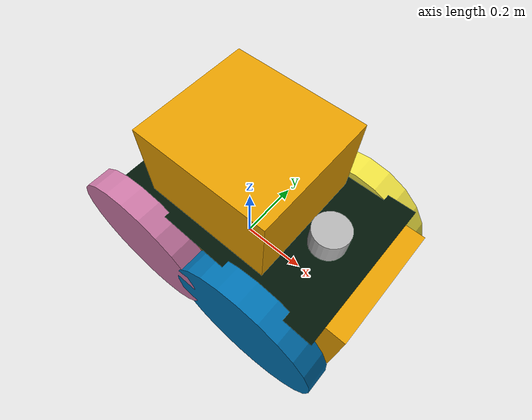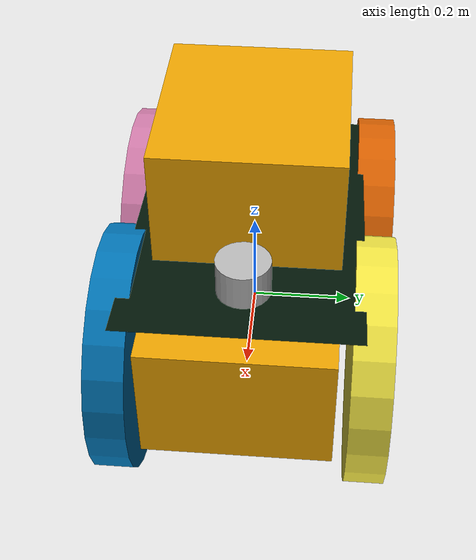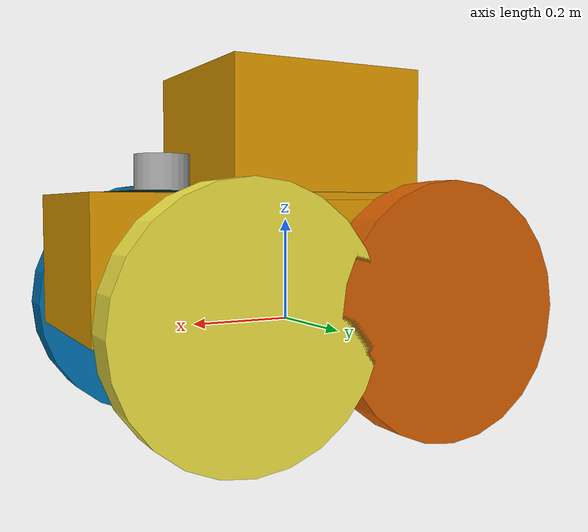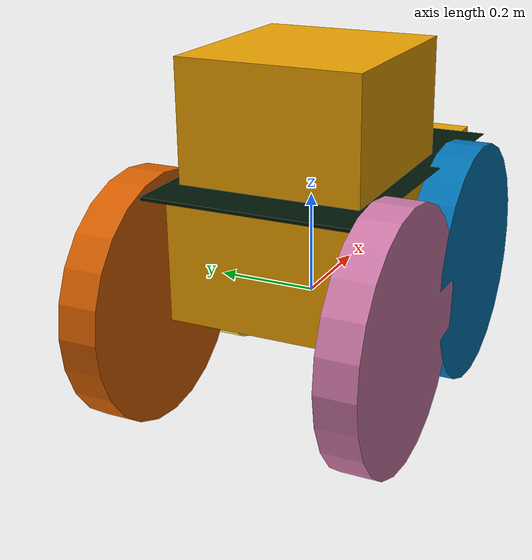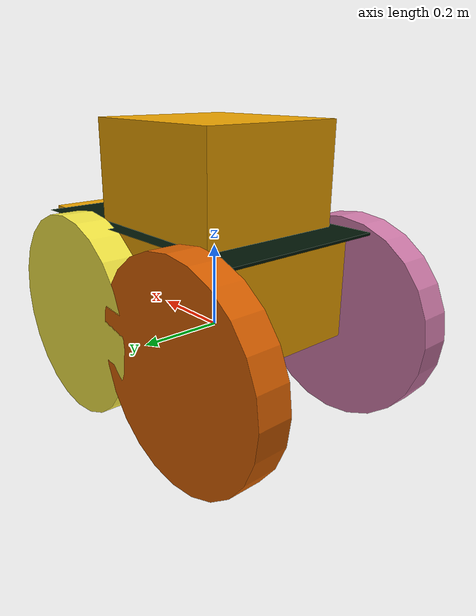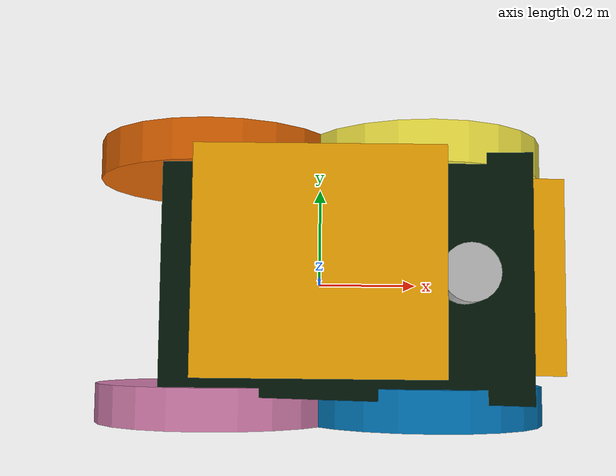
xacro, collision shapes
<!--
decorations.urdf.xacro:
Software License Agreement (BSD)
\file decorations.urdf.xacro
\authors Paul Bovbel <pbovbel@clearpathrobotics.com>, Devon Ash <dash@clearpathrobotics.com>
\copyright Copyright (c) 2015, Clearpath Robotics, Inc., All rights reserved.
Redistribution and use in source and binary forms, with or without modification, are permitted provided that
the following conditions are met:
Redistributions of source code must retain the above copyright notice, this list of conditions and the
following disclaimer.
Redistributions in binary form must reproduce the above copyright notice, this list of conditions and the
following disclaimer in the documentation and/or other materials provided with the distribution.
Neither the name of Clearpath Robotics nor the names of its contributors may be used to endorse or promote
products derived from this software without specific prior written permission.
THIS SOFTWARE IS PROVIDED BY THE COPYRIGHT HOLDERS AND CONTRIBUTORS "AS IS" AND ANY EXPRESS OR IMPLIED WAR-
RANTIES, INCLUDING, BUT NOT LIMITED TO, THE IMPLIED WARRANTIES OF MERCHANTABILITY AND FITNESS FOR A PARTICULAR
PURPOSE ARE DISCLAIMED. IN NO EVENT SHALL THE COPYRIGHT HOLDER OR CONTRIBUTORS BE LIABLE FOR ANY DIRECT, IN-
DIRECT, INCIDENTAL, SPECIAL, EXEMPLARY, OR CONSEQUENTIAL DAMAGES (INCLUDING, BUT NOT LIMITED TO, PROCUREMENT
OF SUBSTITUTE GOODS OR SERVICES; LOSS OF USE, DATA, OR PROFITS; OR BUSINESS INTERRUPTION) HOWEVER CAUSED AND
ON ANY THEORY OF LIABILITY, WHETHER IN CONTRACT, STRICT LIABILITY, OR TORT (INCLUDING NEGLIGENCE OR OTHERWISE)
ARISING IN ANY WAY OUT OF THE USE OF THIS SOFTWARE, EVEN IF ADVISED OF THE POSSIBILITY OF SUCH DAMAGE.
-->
<?xml version="1.0"?>
<robot name="trog" xmlns:xacro="http://ros.org/wiki/xacro">

  <!-- General Arguements -->
  <xacro:arg name="robot_namespace" default="/" />
  <xacro:arg name="urdf_extras" default="empty.urdf" />
  <xacro:arg name="laser_enabled" default="true" />
  <xacro:arg name="gpu" default="false"/>
  <xacro:property name="gpu" value="$(arg gpu)" />
  <xacro:arg name="organize_cloud" default="false"/>
  <xacro:property name="organize_cloud" value="$(arg organize_cloud)" />
  <xacro:property name="M_PI" value="3.14159"/>

  <!-- Included URDF/XACRO Files -->
  <xacro:include filename="$(find trog_description)/urdf/decorations.urdf.xacro" />
  <xacro:include filename="$(find trog_description)/urdf/wheel.urdf.xacro" />

  <!-- Included velodyne lidar -->
  <xacro:include filename="$(find velodyne_description)/urdf/VLP_16.urdf.xacro"/>

  <!-- Base Size -->
  <xacro:property name="base_x_size" value="0.48260000" />
  <xacro:property name="base_y_size" value="0.35560000" />
  <xacro:property name="base_z_size" value="0.49630000" />

  <!-- Wheel Mounting Positions -->
  <xacro:property name="wheelbase" value="0.4064" />
  <xacro:property name="track" value="0.4826" />
  <xacro:property name="wheel_vertical_offset" value="0.03" /> <!--MAY NEED TO ADJUST VERTICAL OFFSET -->

  <!-- Wheel Properties -->
  <xacro:property name="wheel_length" value="0.0762" />
  <xacro:property name="wheel_radius" value="0.244" />

  <!-- Base link is the center of the robot's bottom plate -->
  <link name="base_link">
    <visual>
      <origin xyz="0 0 0" rpy="0 0 0" />
      <geometry>
        <mesh filename="package://trog_description/meshes/base_link.dae" />
      </geometry>
    </visual>
    <collision>
      <origin xyz="${20 / 200.0} 0 ${base_z_size/4}" rpy="0 0 0" />
      <geometry>
        <box size="${base_x_size + 20 / 100.0} ${base_y_size} ${base_z_size/2}"/>
      </geometry>
    </collision>
    <collision>
      <origin xyz="0 0 ${base_z_size*3/4-0.01}" rpy="0 0 0" />
      <geometry>
        <box size="${base_x_size*4/5} ${base_y_size} ${base_z_size/2}"/>
      </geometry>
    </collision>
  </link>

  <!-- Base footprint is on the ground under the robot -->
  <link name="base_footprint"/>
  <joint name="base_footprint_joint" type="fixed">
    <origin xyz="0 0 ${wheel_vertical_offset - wheel_radius}" rpy="0 0 0" />
    <parent link="base_link" />
    <child link="base_footprint" />
  </joint>

  <!-- Inertial link stores the robot's inertial information -->
  <link name="inertial_link">
    <inertial>
      <mass value="50" />
      <origin xyz="0 0 0.1" />
      <inertia ixx="0.6022" ixy="-0.02364" ixz="-0.1197" iyy="1.7386" iyz="-0.001544" izz="2.0296" />
    </inertial>
  </link>

  <joint name="inertial_joint" type="fixed">
    <origin xyz="0 0 0" rpy="0 0 0" />
    <parent link="base_link" />
    <child link="inertial_link" />
  </joint>

  <!-- IMU Link is the standard mounting position for the UM6 IMU.-->
  <!-- Can be modified with environment variables in /etc/ros/setup.bash -->

  <!-- Antbot wheel macros -->
  <xacro:trog_wheel wheel_prefix="front_left">
    <origin xyz="${wheelbase/2} ${track/2} ${wheel_vertical_offset}" rpy="0 0 0" />
  </xacro:trog_wheel>
  <xacro:trog_wheel wheel_prefix="front_right">
    <origin xyz="${wheelbase/2} ${-track/2} ${wheel_vertical_offset}" rpy="0 0 0" />
  </xacro:trog_wheel>
  <xacro:trog_wheel wheel_prefix="rear_left">
    <origin xyz="${-wheelbase/2} ${track/2} ${wheel_vertical_offset}" rpy="0 0 0" />
  </xacro:trog_wheel>
  <xacro:trog_wheel wheel_prefix="rear_right">
    <origin xyz="${-wheelbase/2} ${-track/2} ${wheel_vertical_offset}" rpy="0 0 0" />
  </xacro:trog_wheel>

  <!-- Velodyne Lidar -->
  <xacro:if value="$(arg laser_enabled)">
  <xacro:VLP_16 parent="base_link" name="velodyne" topic="/velodyne_points" organize_cloud="${organize_cloud}" hz="10" samples="440" gpu="${gpu}">
  <origin xyz="0.26 0 0.25" rpy="0 0 0" /> <!-- NEED TO FIND CORRECT POSITION -->
  </xacro:VLP_16>
  </xacro:if>

  <!-- Decorations -->
  <xacro:Antbot_decorate />

  <!-- Gazebo Plugins -->
  <gazebo>
    <plugin name="gazebo_ros_control" filename="libgazebo_ros_control.so">
      <robotNamespace>$(arg robot_namespace)</robotNamespace>
      <legacyModeNS>true</legacyModeNS>
    </plugin>
  </gazebo>

  <!-- Optional custom includes. -->
  <xacro:include filename="$(arg urdf_extras)" />
</robot>

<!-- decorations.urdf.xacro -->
<robot name="Antbot_decorations" xmlns:xacro="http://ros.org/wiki/xacro">

  <material name="dark_grey"><color rgba="0.2 0.2 0.2 1.0" /></material>
  <material name="medium_grey"><color rgba="0.6 0.6 0.6 1.0" /></material>
  <material name="light_grey"><color rgba="0.8 0.8 0.8 1.0" /></material>
  <material name="yellow"><color rgba="0.8 0.8 0.0 1.0" /></material>
  <material name="black"><color rgba="0.15 0.15 0.15 1.0" /></material>
  <material name="white"><color rgba="1.0 1.0 1.0 1.0" /></material>
  <material name="red"><color rgba="1.0 0.0 0.0 1.0" /></material>

  <xacro:macro name="Antbot_decorate">

        <link name="top_plate_link">
          <visual>
            <origin xyz="0 0 0" rpy="0 0 0" />
            <geometry>
              <mesh filename="package://trog_description/meshes/top_plate.dae" />
            </geometry>
          </visual>
          <collision>
            <origin xyz="0 0 0" rpy="0 0 0"/>
            <geometry>
              <mesh filename="package://trog_description/meshes/top_plate.stl" />
            </geometry>
          </collision>
        </link>

        <!-- Attach top plate -->
        <joint name="top_plate_joint" type="fixed">
          <parent link="base_link" />
          <child link="top_plate_link"/>
          <origin xyz="0.0812 0 0.245" rpy="0 0 0"/>
        </joint>
        <!-- Top plate front link -->
        <joint name="top_plate_front_joint" type="fixed">
          <parent link="top_plate_link" />
          <child link="top_plate_front_link"/>
          <origin xyz="0.36367 0 0.00639" rpy="0 0 0"/>
        </joint>
        <!-- Top plate rear link-->
        <joint name="top_plate_rear_joint" type="fixed">
          <parent link="top_plate_link" />
          <child link="top_plate_rear_link"/>
          <origin xyz="-0.36633 0 0.00639" rpy="0 0 0"/>
        </joint>

      <link name="top_plate_front_link"/>
      <link name="top_plate_rear_link"/>

  </xacro:macro>

</robot>

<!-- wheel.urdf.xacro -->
<robot xmlns:xacro="http://ros.org/wiki/xacro" name="trog_wheel">

	<xacro:macro name="trog_wheel" params="wheel_prefix *joint_pose">
		<link name="${wheel_prefix}_wheel_link">
			<inertial>
				<mass value="2.637" />
				<origin xyz="0 0 0" />
				<inertia  ixx="0.02467" ixy="0" ixz="0" iyy="0.04411" iyz="0" izz="0.02467" />
			</inertial>
			<visual>
				<origin xyz="0 0 0" rpy="0 0 0" />
				<geometry>
					<mesh filename="package://trog_description/meshes/wheel.dae" />
				</geometry>
			</visual>
			<collision>
				<origin xyz="0 0 0" rpy="${M_PI/2} 0 0" />
				<geometry>
					<cylinder length="${wheel_length}" radius="${wheel_radius}" />
				</geometry>
			</collision>
		</link>

		<gazebo reference="${wheel_prefix}_wheel_link">
			<mu1 value="1.0"/>
			<mu2 value="0.5"/>
			<kp value="10000000.0" />
			<kd value="1.0" />
			<fdir1 value="1 0 0"/>
		</gazebo>

		<joint name="${wheel_prefix}_wheel" type="continuous">
			<parent link="base_link"/>
			<child link="${wheel_prefix}_wheel_link"/>
			<xacro:insert_block name="joint_pose"/>
			<axis xyz="0 1 0" rpy="0 0 0" />
		</joint>

		<transmission name="${wheel_prefix}_wheel_trans" type="SimpleTransmission">
			<type>transmission_interface/SimpleTransmission</type>
			<actuator name="${wheel_prefix}_wheel_motor">
				<mechanicalReduction>1</mechanicalReduction>
			</actuator>
			<joint name="${wheel_prefix}_wheel">
				<hardwareInterface>hardware_interface/VelocityJointInterface</hardwareInterface>
			</joint>
		</transmission>

	</xacro:macro>
</robot>

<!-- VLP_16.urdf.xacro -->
<robot xmlns:xacro="http://www.ros.org/wiki/xacro" name="VLP_16">
  <xacro:property name="M_PI" value="3.1415926535897931" />
  <xacro:macro name="VLP_16" params="*origin parent:=base_link name:=velodyne topic:=/velodyne_points organize_cloud:=false hz:=10 lasers:=16 samples:=1875 collision_range:=0.3 min_range:=0.5 max_range:=130.0 noise:=0.008 min_angle:=-${M_PI} max_angle:=${M_PI} gpu:=false">

    <joint name="${name}_base_mount_joint" type="fixed">
      <xacro:insert_block name="origin" />
      <parent link="${parent}"/>
      <child link="${name}_base_link"/>
    </joint>

    <link name="${name}_base_link">
      <inertial>
        <mass value="0.83"/>
        <origin xyz="0 0 0.03585"/>
        <inertia ixx="${(0.83 * (3.0*0.0516*0.0516 + 0.0717*0.0717)) / 12.0}" ixy="0" ixz="0"
          iyy="${(0.83 * (3.0*0.0516*0.0516 + 0.0717*0.0717)) / 12.0}" iyz="0"
          izz="${0.5 * 0.83 * (0.0516*0.0516)}"/>
      </inertial>
      <visual>
        <geometry>
          <mesh filename="package://velodyne_description/meshes/VLP16_base_1.dae" />
        </geometry>
      </visual>
      <visual>
        <geometry>
          <mesh filename="package://velodyne_description/meshes/VLP16_base_2.dae" />
        </geometry>
      </visual>
      <collision>
        <origin rpy="0 0 0" xyz="0 0 0.03585"/>
        <geometry>
          <cylinder radius="0.0516" length="0.0717"/>
        </geometry>
      </collision>
    </link>

    <joint name="${name}_base_scan_joint" type="fixed" >
      <origin xyz="0 0 0.0377" rpy="0 0 0" />
      <parent link="${name}_base_link" />
      <child link="${name}"/>
    </joint>

    <link name="${name}">
      <inertial>
        <mass value="0.01"/>
        <origin xyz="0 0 0"/>
        <inertia ixx="1e-7" ixy="0" ixz="0" iyy="1e-7" iyz="0" izz="1e-7"/>
      </inertial>
      <visual>
        <origin xyz="0 0 -0.0377" />
        <geometry>
          <mesh filename="package://velodyne_description/meshes/VLP16_scan.dae" />
        </geometry>
      </visual>
    </link>

    <!-- Gazebo requires the velodyne_gazebo_plugins package -->
    <gazebo reference="${name}">
      <xacro:if value="${gpu}">
        <sensor type="gpu_ray" name="${name}-VLP16">
          <pose>0 0 0 0 0 0</pose>
          <visualize>true</visualize>
          <update_rate>${hz}</update_rate>
          <ray>
            <scan>
              <horizontal>
                <samples>${samples}</samples>
                <resolution>1</resolution>
                <min_angle>${min_angle}</min_angle>
                <max_angle>${max_angle}</max_angle>
              </horizontal>
              <vertical>
                <samples>${lasers}</samples>
                <resolution>1</resolution>
                <min_angle>-${15.0*M_PI/180.0}</min_angle>
                <max_angle> ${15.0*M_PI/180.0}</max_angle>
              </vertical>
            </scan>
            <range>
              <min>${collision_range}</min>
              <max>${max_range+1}</max>
              <resolution>0.001</resolution>
            </range>
            <noise>
              <type>gaussian</type>
              <mean>0.0</mean>
              <stddev>0.0</stddev>
            </noise>
          </ray>
          <plugin name="gazebo_ros_laser_controller" filename="libgazebo_ros_velodyne_gpu_laser.so">
            <topicName>${topic}</topicName>
            <frameName>${name}</frameName>
            <organize_cloud>${organize_cloud}</organize_cloud>
            <min_range>${min_range}</min_range>
            <max_range>${max_range}</max_range>
            <gaussianNoise>${noise}</gaussianNoise>
          </plugin>
        </sensor>
      </xacro:if>
      <xacro:unless value="${gpu}">
        <sensor type="ray" name="${name}-VLP16">
          <pose>0 0 0 0 0 0</pose>
          <visualize>false</visualize>
          <update_rate>${hz}</update_rate>
          <ray>
            <scan>
              <horizontal>
                <samples>${samples}</samples>
                <resolution>1</resolution>
                <min_angle>${min_angle}</min_angle>
                <max_angle>${max_angle}</max_angle>
              </horizontal>
              <vertical>
                <samples>${lasers}</samples>
                <resolution>1</resolution>
                <min_angle>-${15.0*M_PI/180.0}</min_angle>
                <max_angle> ${15.0*M_PI/180.0}</max_angle>
              </vertical>
            </scan>
            <range>
              <min>${collision_range}</min>
              <max>${max_range+1}</max>
              <resolution>0.001</resolution>
            </range>
            <noise>
              <type>gaussian</type>
              <mean>0.0</mean>
              <stddev>0.0</stddev>
            </noise>
          </ray>
          <plugin name="gazebo_ros_laser_controller" filename="libgazebo_ros_velodyne_laser.so">
            <topicName>${topic}</topicName>
            <frameName>${name}</frameName>
            <organize_cloud>${organize_cloud}</organize_cloud>
            <min_range>${min_range}</min_range>
            <max_range>${max_range}</max_range>
            <gaussianNoise>${noise}</gaussianNoise>
          </plugin>
        </sensor>
      </xacro:unless>
    </gazebo>

  </xacro:macro>
</robot>
